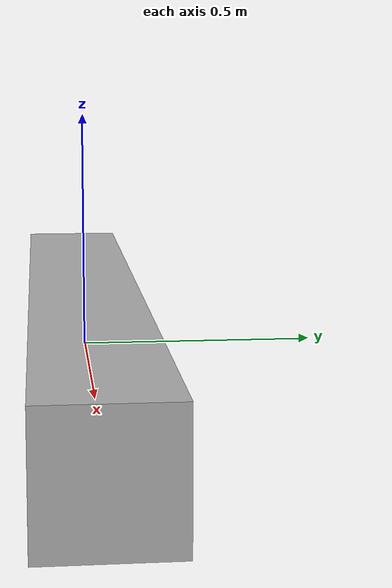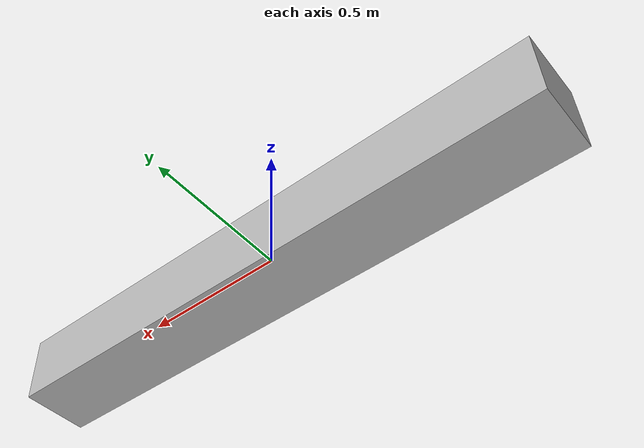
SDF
<?xml version="1.0" ?>
<sdf version="1.5">
  <model name="Rockwool_24_24_200">
    <pose>0 0 0 0 0 0</pose>
    <link name="link">

    <inertial>
        <mass>1</mass>
        <inertia>
          <ixx>0.0096</ixx>
          <ixy>0</ixy>
          <ixz>0</ixz>
          <iyy>0.3381333333</iyy>
          <iyz>0</iyz>
          <izz>0.3381333333</izz>
        </inertia>
    </inertial>

    <collision name="collision">
    <pose>0 0 0 0 0 0</pose>
      <geometry>
          <box>
            <size>2 0.24 0.24</size>
          </box>
      </geometry>
      <surface>
        <friction>
          <ode>
            <mu>0.86</mu>
            <mu2>0.86</mu2>
          </ode>
        </friction>
        <contact>
          <ode>
            <max_vel>1</max_vel>
            <min_depth>0.01</min_depth>
          </ode>
        </contact>
      </surface>
    </collision>

    <visual name="visual">
      <geometry>
        <mesh>
          <uri>model://rockwool_24_24_200/meshes/model.dae</uri>
          <scale>0.5 0.5 0.5</scale>
        </mesh>
      </geometry>
    </visual>

  </link>
</model>

</sdf>
